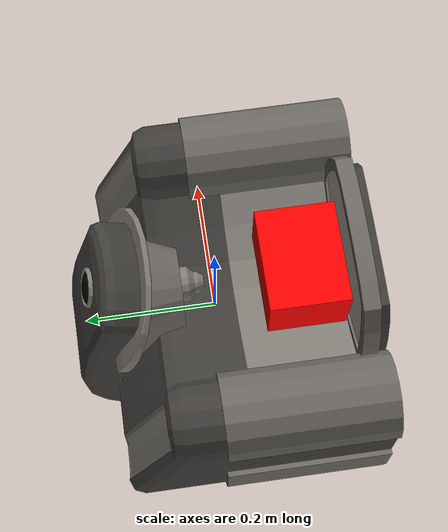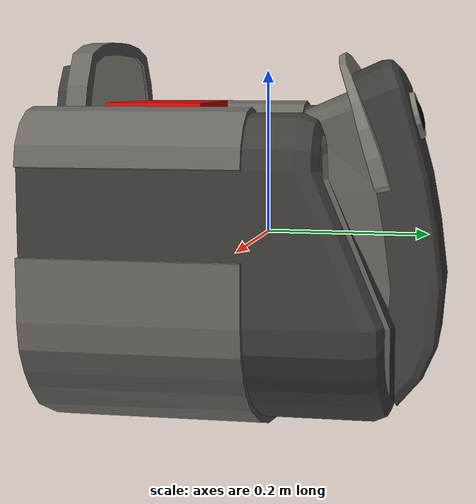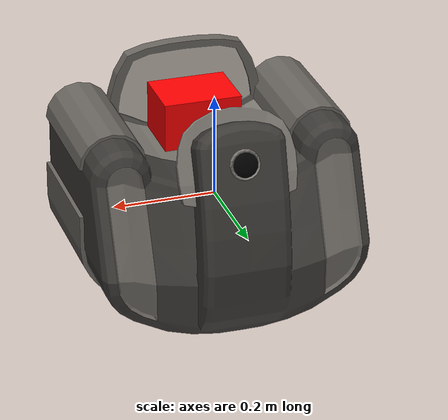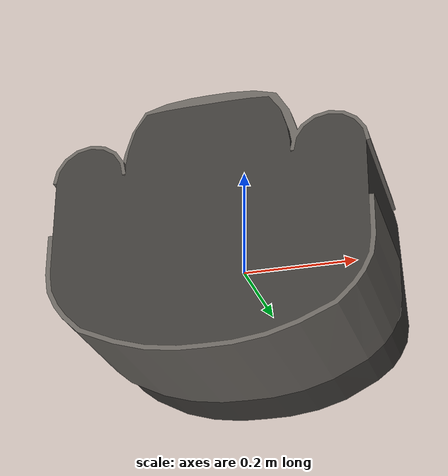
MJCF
<mujoco model="coffee_machine_15">
  <compiler autolimits="true" boundmass="0.01" angle="radian"/>
  <default>
    <default class="/">
      <default class="__VISUAL_MJT__">
        <geom contype="0" conaffinity="0" group="0"/>
      </default>
      <default class="__STRUCTURAL_MJT__">
        <geom contype="8" conaffinity="15" group="4" friction="0.90000000000000002 0.90000000000000002 0.001" solref="0.025000000000000001 1" solimp="0.998 0.998 0.001"/>
      </default>
      <default class="__DYNAMIC_MJT__">
        <geom contype="1" conaffinity="15" group="4" friction="0.90000000000000002 0.90000000000000002 0.001" solref="0.025000000000000001 1" solimp="0.998 0.998 0.001"/>
      </default>
    </default>
  </default>
  <asset>
    <material name="material_coffee_machine_backup_mat" class="/" specular="0.5" shininess="0.5" rgba="0.5 0.5 0.5 1"/>
    <material name="material_Coffee_Machine_Readout_Mat_Off" class="/" specular="0.5" shininess="0.5" rgba="0 0 0 1"/>
    <texture name="Coffee_Machine_Decal_Mat" type="2d" file="Coffee_Machine_Decal_AlbedoTransparency.png"/>
    <material name="material_Coffee_Machine_Decal_Mat" class="/" texture="Coffee_Machine_Decal_Mat" specular="0.5" shininess="0.5" rgba="1 1 1 1"/>
    <texture name="Coffee_Machine_Metal_Mat" type="2d" file="MetalBumpy_AlbedoTransparency.png"/>
    <material name="material_Coffee_Machine_Metal_Mat" class="/" texture="Coffee_Machine_Metal_Mat" specular="0.5" shininess="0.5" rgba="0.66176469999999998 0.66176469999999998 0.66176469999999998 1"/>
    <texture name="Coffee_Machine_Secondary5_Color_Mat" type="2d" file="BrushedIron_AlbedoTransparency.png"/>
    <material name="material_Coffee_Machine_Secondary5_Color_Mat" class="/" texture="Coffee_Machine_Secondary5_Color_Mat" specular="0.5" shininess="0.5" rgba="0.55147060000000003 0.55147060000000003 0.55147060000000003 1"/>
    <texture name="Coffee_Machine_Primary5_Color_Mat" type="2d" file="BrushedAluminum_AlbedoTransparency.png"/>
    <material name="material_Coffee_Machine_Primary5_Color_Mat" class="/" texture="Coffee_Machine_Primary5_Color_Mat" specular="0.5" shininess="0.5" rgba="0.32352940000000002 0.32352940000000002 0.32352940000000002 1"/>
    <mesh name="coffee_machine_15_coffee_machine_15_0" class="/" file="coffee_machine_15_coffee_machine_15/coffee_machine_15_coffee_machine_15_0.obj" scale="1 1 1"/>
    <mesh name="coffee_machine_15_coffee_machine_15_1" class="/" file="coffee_machine_15_coffee_machine_15/coffee_machine_15_coffee_machine_15_1.obj" scale="1 1 1"/>
    <mesh name="coffee_machine_15_coffee_machine_15_2" class="/" file="coffee_machine_15_coffee_machine_15/coffee_machine_15_coffee_machine_15_2.obj" scale="1 1 1"/>
    <mesh name="coffee_machine_15_coffee_machine_15_3" class="/" file="coffee_machine_15_coffee_machine_15/coffee_machine_15_coffee_machine_15_3.obj" scale="1 1 1"/>
    <mesh name="coffee_machine_15_coffee_machine_15_4" class="/" file="coffee_machine_15_coffee_machine_15/coffee_machine_15_coffee_machine_15_4.obj" scale="1 1 1"/>
    <mesh name="coffee_machine_15_coffee_machine_15_5" class="/" file="coffee_machine_15_coffee_machine_15/coffee_machine_15_coffee_machine_15_5.obj" scale="1 1 1"/>
  </asset>
  <worldbody>
    <body name="coffee_machine_15">
      <joint name="coffee_machine_15_free" class="/" type="free" pos="0 0 0" axis="0 0 1" stiffness="0" range="0 0" armature="0" damping="0.10000000000000001" frictionloss="0"/>
      <body name="coffee_machine_15_coffee_machine_15" pos="-0 -0.23021 -0.034099999999999998" quat="1 0 0 0">
        <geom name="coffee_machine_15_coffee_machine_15_0" class="__VISUAL_MJT__" type="mesh" material="material_coffee_machine_backup_mat" shellinertia="true" mesh="coffee_machine_15_coffee_machine_15_0"/>
        <geom name="coffee_machine_15_coffee_machine_15_1" class="__VISUAL_MJT__" type="mesh" material="material_Coffee_Machine_Readout_Mat_Off" shellinertia="false" mesh="coffee_machine_15_coffee_machine_15_1"/>
        <geom name="coffee_machine_15_coffee_machine_15_2" class="__VISUAL_MJT__" type="mesh" material="material_Coffee_Machine_Decal_Mat" shellinertia="true" mesh="coffee_machine_15_coffee_machine_15_2"/>
        <geom name="coffee_machine_15_coffee_machine_15_3" class="__VISUAL_MJT__" type="mesh" material="material_Coffee_Machine_Metal_Mat" shellinertia="false" mesh="coffee_machine_15_coffee_machine_15_3"/>
        <geom name="coffee_machine_15_coffee_machine_15_4" class="__VISUAL_MJT__" type="mesh" material="material_Coffee_Machine_Secondary5_Color_Mat" shellinertia="false" mesh="coffee_machine_15_coffee_machine_15_4"/>
        <geom name="coffee_machine_15_coffee_machine_15_5" class="__VISUAL_MJT__" type="mesh" material="material_Coffee_Machine_Primary5_Color_Mat" shellinertia="false" mesh="coffee_machine_15_coffee_machine_15_5"/>
        <site name="coffee_machine_15_Receptacle_0" class="/" type="box" rgba="1 0 0 1" size="0.076730817556381226 0.059148699045181274 0.047684434801340103" pos="-0 0.10254870355129242 0.14806145429611206" quat="1 0 0 0"/>
        <geom name="coffee_machine_15_PrimitiveCollider_0" class="__DYNAMIC_MJT__" type="box" size="0.26713794469833374 0.23020994663238525 0.14630752801895142" rgba="0 1 0 1" pos="-0 0.23020994663238525 -0.053626120090484619" quat="1 0 0 0"/>
        <geom name="coffee_machine_15_PrimitiveCollider_1" class="__DYNAMIC_MJT__" type="box" size="0.054967589676380157 0.17219972610473633 0.10658884048461914" rgba="0 1 0 1" pos="-0.20999999344348907 0.17219972610473633 0.081092566251754761" quat="1 0 0 0"/>
        <geom name="coffee_machine_15_PrimitiveCollider_2" class="__DYNAMIC_MJT__" type="box" size="0.054967589676380157 0.17219972610473633 0.10658884048461914" rgba="0 1 0 1" pos="0.20900000631809235 0.17219972610473633 0.081092357635498047" quat="1 0 0 0"/>
        <geom name="coffee_machine_15_PrimitiveCollider_3" class="__DYNAMIC_MJT__" type="box" size="0.054967589676380157 0.17219972610473633 0.10658884048461914" rgba="0 1 0 1" pos="0.2090001106262207 0.17219972610473633 0.081092357635498047" quat="1 0 0 0"/>
        <geom name="coffee_machine_15_PrimitiveCollider_4" class="__DYNAMIC_MJT__" type="box" size="0.11321139335632324 0.065183937549591064 0.12075116485357285" rgba="0 1 0 1" pos="0.00060702674090862274 0.35973244905471802 0.11656352877616882" quat="0.99110913276672363 0.13305157423019409 -1.7396007396635729e-18 1.5860981861237633e-08"/>
        <geom name="coffee_machine_15_PrimitiveCollider_5" class="__DYNAMIC_MJT__" type="box" size="0.14951613545417786 0.021148741245269775 0.056336641311645508" rgba="0 1 0 1" pos="-0 0.021148741245269775 0.2118070125579834" quat="1 0 0 0"/>
      </body>
    </body>
  </worldbody>
</mujoco>
